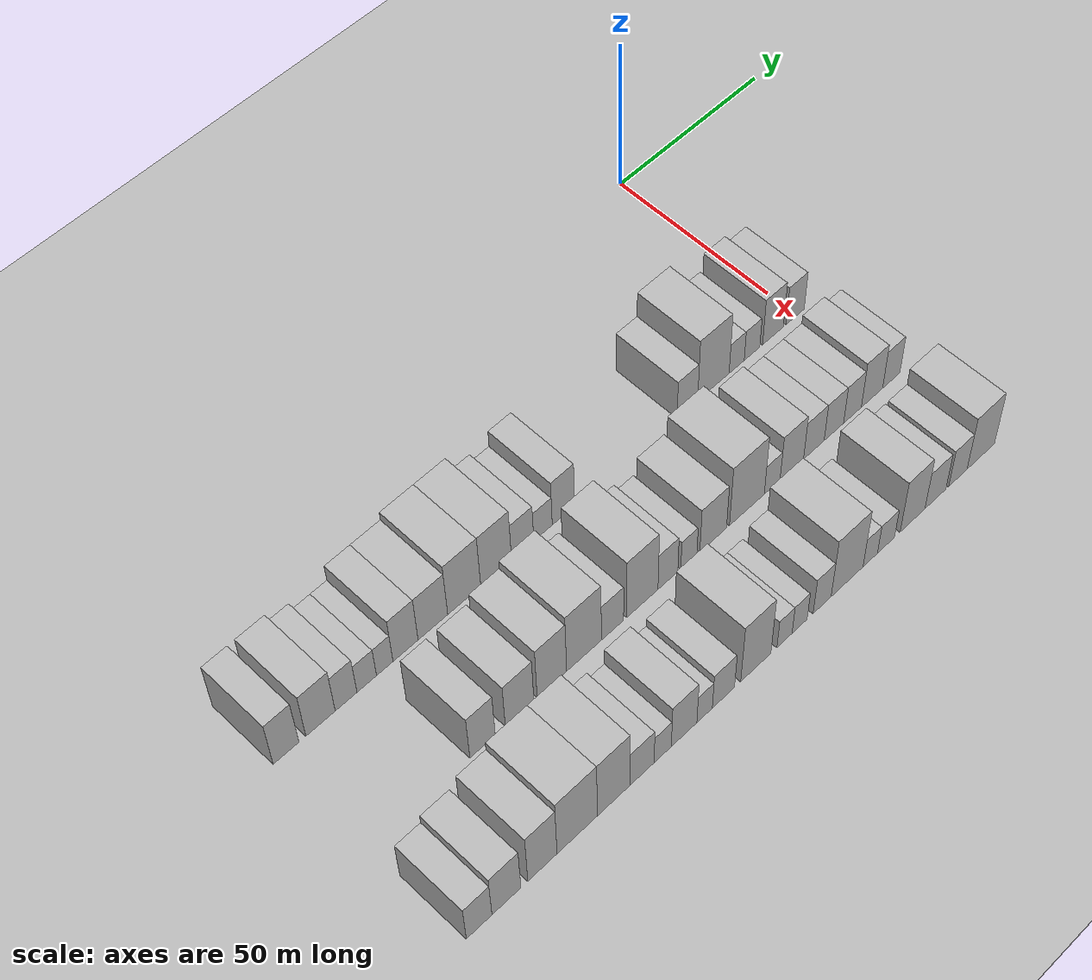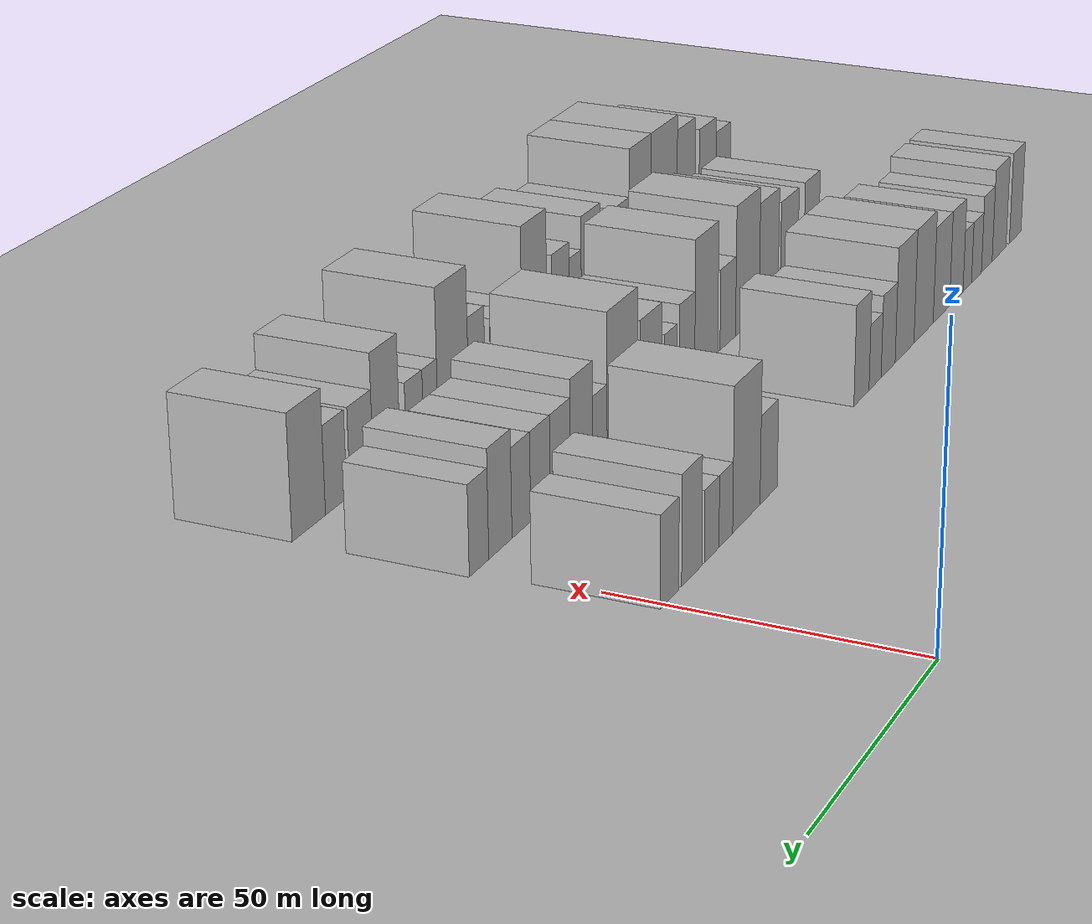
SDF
<sdf version="1.6">
 <world name="default">
  <include><name>ground_plane_1</name><uri>model://HANNAS_ground_plane</uri></include>
  <include>
   <name>ground_plane_2</name>
   <uri>model://HANNAS_ground_plane</uri>
   <pose>100 0 0  0 0 0</pose>
  </include>
  <model name="building_20">
   <static>1</static>
   <pose>50.0000 -164.3365 0 0.000000 0.000000 0.000000</pose>
   <link name="link">
    <pose>0 0 9.00 0 0 0</pose>
    <collision name="collision"><geometry><box><size>20.0000 7.3120 18.0000</size></box></geometry></collision>
    <visual name="visual">
     <cast_shadows>0</cast_shadows>
     <geometry><box><size>20.0000 7.3120 18.0000</size></box></geometry>
     <material>
      <script>
       <uri>model://HANNAS_wall/materials/scripts</uri>
       <uri>model://HANNAS_wall/materials/textures</uri>
       <name>vrc/HANNAS_wall</name>
      </script>
     </material>
    </visual>
   </link>
  </model>
  <model name="building_21">
   <static>1</static>
   <pose>50.0000 -154.4508 0 0.000000 0.000000 0.000000</pose>
   <link name="link">
    <pose>0 0 9.00 0 0 0</pose>
    <collision name="collision"><geometry><box><size>20.0000 8.4593 18.0000</size></box></geometry></collision>
    <visual name="visual">
     <cast_shadows>0</cast_shadows>
     <geometry><box><size>20.0000 8.4593 18.0000</size></box></geometry>
     <material>
      <script>
       <uri>model://HANNAS_wall/materials/scripts</uri>
       <uri>model://HANNAS_wall/materials/textures</uri>
       <name>vrc/HANNAS_wall</name>
      </script>
     </material>
    </visual>
   </link>
  </model>
  <model name="building_22">
   <static>1</static>
   <pose>50.0000 -147.0573 0 0.000000 0.000000 0.000000</pose>
   <link name="link">
    <pose>0 0 7.50 0 0 0</pose>
    <collision name="collision"><geometry><box><size>20.0000 6.3278 15.0000</size></box></geometry></collision>
    <visual name="visual">
     <cast_shadows>0</cast_shadows>
     <geometry><box><size>20.0000 6.3278 15.0000</size></box></geometry>
     <material>
      <script>
       <uri>model://HANNAS_wall/materials/scripts</uri>
       <uri>model://HANNAS_wall/materials/textures</uri>
       <name>vrc/HANNAS_wall</name>
      </script>
     </material>
    </visual>
   </link>
  </model>
  <model name="building_23">
   <static>1</static>
   <pose>50.0000 -141.0131 0 0.000000 0.000000 0.000000</pose>
   <link name="link">
    <pose>0 0 6.00 0 0 0</pose>
    <collision name="collision"><geometry><box><size>20.0000 5.7605 12.0000</size></box></geometry></collision>
    <visual name="visual">
     <cast_shadows>0</cast_shadows>
     <geometry><box><size>20.0000 5.7605 12.0000</size></box></geometry>
     <material>
      <script>
       <uri>model://HANNAS_wall/materials/scripts</uri>
       <uri>model://HANNAS_wall/materials/textures</uri>
       <name>vrc/HANNAS_wall</name>
      </script>
     </material>
    </visual>
   </link>
  </model>
  <model name="building_24">
   <static>1</static>
   <pose>50.0000 -135.6958 0 0.000000 0.000000 0.000000</pose>
   <link name="link">
    <pose>0 0 6.00 0 0 0</pose>
    <collision name="collision"><geometry><box><size>20.0000 4.8741 12.0000</size></box></geometry></collision>
    <visual name="visual">
     <cast_shadows>0</cast_shadows>
     <geometry><box><size>20.0000 4.8741 12.0000</size></box></geometry>
     <material>
      <script>
       <uri>model://HANNAS_wall/materials/scripts</uri>
       <uri>model://HANNAS_wall/materials/textures</uri>
       <name>vrc/HANNAS_wall</name>
      </script>
     </material>
    </visual>
   </link>
  </model>
  <model name="building_25">
   <static>1</static>
   <pose>50.0000 -129.4872 0 0.000000 0.000000 0.000000</pose>
   <link name="link">
    <pose>0 0 9.00 0 0 0</pose>
    <collision name="collision"><geometry><box><size>20.0000 7.5432 18.0000</size></box></geometry></collision>
    <visual name="visual">
     <cast_shadows>0</cast_shadows>
     <geometry><box><size>20.0000 7.5432 18.0000</size></box></geometry>
     <material>
      <script>
       <uri>model://HANNAS_wall/materials/scripts</uri>
       <uri>model://HANNAS_wall/materials/textures</uri>
       <name>vrc/HANNAS_wall</name>
      </script>
     </material>
    </visual>
   </link>
  </model>
  <model name="building_26">
   <static>1</static>
   <pose>50.0000 -121.2237 0 0.000000 0.000000 0.000000</pose>
   <link name="link">
    <pose>0 0 9.00 0 0 0</pose>
    <collision name="collision"><geometry><box><size>20.0000 8.9837 18.0000</size></box></geometry></collision>
    <visual name="visual">
     <cast_shadows>0</cast_shadows>
     <geometry><box><size>20.0000 8.9837 18.0000</size></box></geometry>
     <material>
      <script>
       <uri>model://HANNAS_wall/materials/scripts</uri>
       <uri>model://HANNAS_wall/materials/textures</uri>
       <name>vrc/HANNAS_wall</name>
      </script>
     </material>
    </visual>
   </link>
  </model>
  <model name="building_27">
   <static>1</static>
   <pose>50.0000 -111.6392 0 0.000000 0.000000 0.000000</pose>
   <link name="link">
    <pose>0 0 10.50 0 0 0</pose>
    <collision name="collision"><geometry><box><size>20.0000 10.1853 21.0000</size></box></geometry></collision>
    <visual name="visual">
     <cast_shadows>0</cast_shadows>
     <geometry><box><size>20.0000 10.1853 21.0000</size></box></geometry>
     <material>
      <script>
       <uri>model://HANNAS_wall/materials/scripts</uri>
       <uri>model://HANNAS_wall/materials/textures</uri>
       <name>vrc/HANNAS_wall</name>
      </script>
     </material>
    </visual>
   </link>
  </model>
  <model name="building_28">
   <static>1</static>
   <pose>50.0000 -101.7299 0 0.000000 0.000000 0.000000</pose>
   <link name="link">
    <pose>0 0 10.50 0 0 0</pose>
    <collision name="collision"><geometry><box><size>20.0000 9.6334 21.0000</size></box></geometry></collision>
    <visual name="visual">
     <cast_shadows>0</cast_shadows>
     <geometry><box><size>20.0000 9.6334 21.0000</size></box></geometry>
     <material>
      <script>
       <uri>model://HANNAS_wall/materials/scripts</uri>
       <uri>model://HANNAS_wall/materials/textures</uri>
       <name>vrc/HANNAS_wall</name>
      </script>
     </material>
    </visual>
   </link>
  </model>
  <model name="building_29">
   <static>1</static>
   <pose>50.0000 -93.3985 0 0.000000 0.000000 0.000000</pose>
   <link name="link">
    <pose>0 0 7.50 0 0 0</pose>
    <collision name="collision"><geometry><box><size>20.0000 7.0294 15.0000</size></box></geometry></collision>
    <visual name="visual">
     <cast_shadows>0</cast_shadows>
     <geometry><box><size>20.0000 7.0294 15.0000</size></box></geometry>
     <material>
      <script>
       <uri>model://HANNAS_wall/materials/scripts</uri>
       <uri>model://HANNAS_wall/materials/textures</uri>
       <name>vrc/HANNAS_wall</name>
      </script>
     </material>
    </visual>
   </link>
  </model>
  <model name="building_30">
   <static>1</static>
   <pose>50.0000 -86.9318 0 0.000000 0.000000 0.000000</pose>
   <link name="link">
    <pose>0 0 6.00 0 0 0</pose>
    <collision name="collision"><geometry><box><size>20.0000 5.9041 12.0000</size></box></geometry></collision>
    <visual name="visual">
     <cast_shadows>0</cast_shadows>
     <geometry><box><size>20.0000 5.9041 12.0000</size></box></geometry>
     <material>
      <script>
       <uri>model://HANNAS_wall/materials/scripts</uri>
       <uri>model://HANNAS_wall/materials/textures</uri>
       <name>vrc/HANNAS_wall</name>
      </script>
     </material>
    </visual>
   </link>
  </model>
  <model name="building_31">
   <static>1</static>
   <pose>50.0000 -80.3663 0 0.000000 0.000000 0.000000</pose>
   <link name="link">
    <pose>0 0 9.00 0 0 0</pose>
    <collision name="collision"><geometry><box><size>20.0000 7.2269 18.0000</size></box></geometry></collision>
    <visual name="visual">
     <cast_shadows>0</cast_shadows>
     <geometry><box><size>20.0000 7.2269 18.0000</size></box></geometry>
     <material>
      <script>
       <uri>model://HANNAS_wall/materials/scripts</uri>
       <uri>model://HANNAS_wall/materials/textures</uri>
       <name>vrc/HANNAS_wall</name>
      </script>
     </material>
    </visual>
   </link>
  </model>
  <model name="building_32">
   <static>1</static>
   <pose>50.0000 -39.1120 0 0.000000 0.000000 0.000000</pose>
   <link name="link">
    <pose>0 0 7.50 0 0 0</pose>
    <collision name="collision"><geometry><box><size>20.0000 7.0939 15.0000</size></box></geometry></collision>
    <visual name="visual">
     <cast_shadows>0</cast_shadows>
     <geometry><box><size>20.0000 7.0939 15.0000</size></box></geometry>
     <material>
      <script>
       <uri>model://HANNAS_wall/materials/scripts</uri>
       <uri>model://HANNAS_wall/materials/textures</uri>
       <name>vrc/HANNAS_wall</name>
      </script>
     </material>
    </visual>
   </link>
  </model>
  <model name="building_33">
   <static>1</static>
   <pose>50.0000 -30.1010 0 0.000000 0.000000 0.000000</pose>
   <link name="link">
    <pose>0 0 12.00 0 0 0</pose>
    <collision name="collision"><geometry><box><size>20.0000 10.9281 24.0000</size></box></geometry></collision>
    <visual name="visual">
     <cast_shadows>0</cast_shadows>
     <geometry><box><size>20.0000 10.9281 24.0000</size></box></geometry>
     <material>
      <script>
       <uri>model://HANNAS_wall/materials/scripts</uri>
       <uri>model://HANNAS_wall/materials/textures</uri>
       <name>vrc/HANNAS_wall</name>
      </script>
     </material>
    </visual>
   </link>
  </model>
  <model name="building_34">
   <static>1</static>
   <pose>50.0000 -21.9774 0 0.000000 0.000000 0.000000</pose>
   <link name="link">
    <pose>0 0 6.00 0 0 0</pose>
    <collision name="collision"><geometry><box><size>20.0000 5.3191 12.0000</size></box></geometry></collision>
    <visual name="visual">
     <cast_shadows>0</cast_shadows>
     <geometry><box><size>20.0000 5.3191 12.0000</size></box></geometry>
     <material>
      <script>
       <uri>model://HANNAS_wall/materials/scripts</uri>
       <uri>model://HANNAS_wall/materials/textures</uri>
       <name>vrc/HANNAS_wall</name>
      </script>
     </material>
    </visual>
   </link>
  </model>
  <model name="building_35">
   <static>1</static>
   <pose>50.0000 -16.5617 0 0.000000 0.000000 0.000000</pose>
   <link name="link">
    <pose>0 0 6.00 0 0 0</pose>
    <collision name="collision"><geometry><box><size>20.0000 5.5124 12.0000</size></box></geometry></collision>
    <visual name="visual">
     <cast_shadows>0</cast_shadows>
     <geometry><box><size>20.0000 5.5124 12.0000</size></box></geometry>
     <material>
      <script>
       <uri>model://HANNAS_wall/materials/scripts</uri>
       <uri>model://HANNAS_wall/materials/textures</uri>
       <name>vrc/HANNAS_wall</name>
      </script>
     </material>
    </visual>
   </link>
  </model>
  <model name="building_36">
   <static>1</static>
   <pose>50.0000 -9.0830 0 0.000000 0.000000 0.000000</pose>
   <link name="link">
    <pose>0 0 9.00 0 0 0</pose>
    <collision name="collision"><geometry><box><size>20.0000 7.4450 18.0000</size></box></geometry></collision>
    <visual name="visual">
     <cast_shadows>0</cast_shadows>
     <geometry><box><size>20.0000 7.4450 18.0000</size></box></geometry>
     <material>
      <script>
       <uri>model://HANNAS_wall/materials/scripts</uri>
       <uri>model://HANNAS_wall/materials/textures</uri>
       <name>vrc/HANNAS_wall</name>
      </script>
     </material>
    </visual>
   </link>
  </model>
  <model name="building_37">
   <static>1</static>
   <pose>50.0000 -1.0751 0 0.000000 0.000000 0.000000</pose>
   <link name="link">
    <pose>0 0 7.50 0 0 0</pose>
    <collision name="collision"><geometry><box><size>20.0000 6.5708 15.0000</size></box></geometry></collision>
    <visual name="visual">
     <cast_shadows>0</cast_shadows>
     <geometry><box><size>20.0000 6.5708 15.0000</size></box></geometry>
     <material>
      <script>
       <uri>model://HANNAS_wall/materials/scripts</uri>
       <uri>model://HANNAS_wall/materials/textures</uri>
       <name>vrc/HANNAS_wall</name>
      </script>
     </material>
    </visual>
   </link>
  </model>
  <model name="building_95">
   <static>1</static>
   <pose>79.0000 -133.8592 0 0.000000 0.000000 0.000000</pose>
   <link name="link">
    <pose>0 0 9.00 0 0 0</pose>
    <collision name="collision"><geometry><box><size>20.0000 7.5661 18.0000</size></box></geometry></collision>
    <visual name="visual">
     <cast_shadows>0</cast_shadows>
     <geometry><box><size>20.0000 7.5661 18.0000</size></box></geometry>
     <material>
      <script>
       <uri>model://HANNAS_wall/materials/scripts</uri>
       <uri>model://HANNAS_wall/materials/textures</uri>
       <name>vrc/HANNAS_wall</name>
      </script>
     </material>
    </visual>
   </link>
  </model>
  <model name="building_96">
   <static>1</static>
   <pose>79.0000 -122.7537 0 0.000000 0.000000 0.000000</pose>
   <link name="link">
    <pose>0 0 9.00 0 0 0</pose>
    <collision name="collision"><geometry><box><size>20.0000 8.6448 18.0000</size></box></geometry></collision>
    <visual name="visual">
     <cast_shadows>0</cast_shadows>
     <geometry><box><size>20.0000 8.6448 18.0000</size></box></geometry>
     <material>
      <script>
       <uri>model://HANNAS_wall/materials/scripts</uri>
       <uri>model://HANNAS_wall/materials/textures</uri>
       <name>vrc/HANNAS_wall</name>
      </script>
     </material>
    </visual>
   </link>
  </model>
  <model name="building_97">
   <static>1</static>
   <pose>79.0000 -112.8935 0 0.000000 0.000000 0.000000</pose>
   <link name="link">
    <pose>0 0 10.50 0 0 0</pose>
    <collision name="collision"><geometry><box><size>20.0000 9.0756 21.0000</size></box></geometry></collision>
    <visual name="visual">
     <cast_shadows>0</cast_shadows>
     <geometry><box><size>20.0000 9.0756 21.0000</size></box></geometry>
     <material>
      <script>
       <uri>model://HANNAS_wall/materials/scripts</uri>
       <uri>model://HANNAS_wall/materials/textures</uri>
       <name>vrc/HANNAS_wall</name>
      </script>
     </material>
    </visual>
   </link>
  </model>
  <model name="building_98">
   <static>1</static>
   <pose>79.0000 -102.9243 0 0.000000 0.000000 0.000000</pose>
   <link name="link">
    <pose>0 0 12.00 0 0 0</pose>
    <collision name="collision"><geometry><box><size>20.0000 10.8627 24.0000</size></box></geometry></collision>
    <visual name="visual">
     <cast_shadows>0</cast_shadows>
     <geometry><box><size>20.0000 10.8627 24.0000</size></box></geometry>
     <material>
      <script>
       <uri>model://HANNAS_wall/materials/scripts</uri>
       <uri>model://HANNAS_wall/materials/textures</uri>
       <name>vrc/HANNAS_wall</name>
      </script>
     </material>
    </visual>
   </link>
  </model>
  <model name="building_99">
   <static>1</static>
   <pose>79.0000 -93.9970 0 0.000000 0.000000 0.000000</pose>
   <link name="link">
    <pose>0 0 7.50 0 0 0</pose>
    <collision name="collision"><geometry><box><size>20.0000 6.9919 15.0000</size></box></geometry></collision>
    <visual name="visual">
     <cast_shadows>0</cast_shadows>
     <geometry><box><size>20.0000 6.9919 15.0000</size></box></geometry>
     <material>
      <script>
       <uri>model://HANNAS_wall/materials/scripts</uri>
       <uri>model://HANNAS_wall/materials/textures</uri>
       <name>vrc/HANNAS_wall</name>
      </script>
     </material>
    </visual>
   </link>
  </model>
  <model name="building_100">
   <static>1</static>
   <pose>79.0000 -84.4837 0 0.000000 0.000000 0.000000</pose>
   <link name="link">
    <pose>0 0 12.00 0 0 0</pose>
    <collision name="collision"><geometry><box><size>20.0000 10.0348 24.0000</size></box></geometry></collision>
    <visual name="visual">
     <cast_shadows>0</cast_shadows>
     <geometry><box><size>20.0000 10.0348 24.0000</size></box></geometry>
     <material>
      <script>
       <uri>model://HANNAS_wall/materials/scripts</uri>
       <uri>model://HANNAS_wall/materials/textures</uri>
       <name>vrc/HANNAS_wall</name>
      </script>
     </material>
    </visual>
   </link>
  </model>
  <model name="building_101">
   <static>1</static>
   <pose>79.0000 -76.2423 0 0.000000 0.000000 0.000000</pose>
   <link name="link">
    <pose>0 0 7.50 0 0 0</pose>
    <collision name="collision"><geometry><box><size>20.0000 6.4479 15.0000</size></box></geometry></collision>
    <visual name="visual">
     <cast_shadows>0</cast_shadows>
     <geometry><box><size>20.0000 6.4479 15.0000</size></box></geometry>
     <material>
      <script>
       <uri>model://HANNAS_wall/materials/scripts</uri>
       <uri>model://HANNAS_wall/materials/textures</uri>
       <name>vrc/HANNAS_wall</name>
      </script>
     </material>
    </visual>
   </link>
  </model>
  <model name="building_102">
   <static>1</static>
   <pose>79.0000 -69.3883 0 0.000000 0.000000 0.000000</pose>
   <link name="link">
    <pose>0 0 6.00 0 0 0</pose>
    <collision name="collision"><geometry><box><size>20.0000 5.2602 12.0000</size></box></geometry></collision>
    <visual name="visual">
     <cast_shadows>0</cast_shadows>
     <geometry><box><size>20.0000 5.2602 12.0000</size></box></geometry>
     <material>
      <script>
       <uri>model://HANNAS_wall/materials/scripts</uri>
       <uri>model://HANNAS_wall/materials/textures</uri>
       <name>vrc/HANNAS_wall</name>
      </script>
     </material>
    </visual>
   </link>
  </model>
  <model name="building_103">
   <static>1</static>
   <pose>79.0000 -61.3197 0 0.000000 0.000000 0.000000</pose>
   <link name="link">
    <pose>0 0 9.00 0 0 0</pose>
    <collision name="collision"><geometry><box><size>20.0000 8.8769 18.0000</size></box></geometry></collision>
    <visual name="visual">
     <cast_shadows>0</cast_shadows>
     <geometry><box><size>20.0000 8.8769 18.0000</size></box></geometry>
     <material>
      <script>
       <uri>model://HANNAS_wall/materials/scripts</uri>
       <uri>model://HANNAS_wall/materials/textures</uri>
       <name>vrc/HANNAS_wall</name>
      </script>
     </material>
    </visual>
   </link>
  </model>
  <model name="building_104">
   <static>1</static>
   <pose>79.0000 -49.9984 0 0.000000 0.000000 0.000000</pose>
   <link name="link">
    <pose>0 0 12.00 0 0 0</pose>
    <collision name="collision"><geometry><box><size>20.0000 11.7656 24.0000</size></box></geometry></collision>
    <visual name="visual">
     <cast_shadows>0</cast_shadows>
     <geometry><box><size>20.0000 11.7656 24.0000</size></box></geometry>
     <material>
      <script>
       <uri>model://HANNAS_wall/materials/scripts</uri>
       <uri>model://HANNAS_wall/materials/textures</uri>
       <name>vrc/HANNAS_wall</name>
      </script>
     </material>
    </visual>
   </link>
  </model>
  <model name="building_105">
   <static>1</static>
   <pose>79.0000 -41.4154 0 0.000000 0.000000 0.000000</pose>
   <link name="link">
    <pose>0 0 6.00 0 0 0</pose>
    <collision name="collision"><geometry><box><size>20.0000 5.4003 12.0000</size></box></geometry></collision>
    <visual name="visual">
     <cast_shadows>0</cast_shadows>
     <geometry><box><size>20.0000 5.4003 12.0000</size></box></geometry>
     <material>
      <script>
       <uri>model://HANNAS_wall/materials/scripts</uri>
       <uri>model://HANNAS_wall/materials/textures</uri>
       <name>vrc/HANNAS_wall</name>
      </script>
     </material>
    </visual>
   </link>
  </model>
  <model name="building_106">
   <static>1</static>
   <pose>79.0000 -34.6339 0 0.000000 0.000000 0.000000</pose>
   <link name="link">
    <pose>0 0 9.00 0 0 0</pose>
    <collision name="collision"><geometry><box><size>20.0000 8.1629 18.0000</size></box></geometry></collision>
    <visual name="visual">
     <cast_shadows>0</cast_shadows>
     <geometry><box><size>20.0000 8.1629 18.0000</size></box></geometry>
     <material>
      <script>
       <uri>model://HANNAS_wall/materials/scripts</uri>
       <uri>model://HANNAS_wall/materials/textures</uri>
       <name>vrc/HANNAS_wall</name>
      </script>
     </material>
    </visual>
   </link>
  </model>
  <model name="building_107">
   <static>1</static>
   <pose>79.0000 -26.9475 0 0.000000 0.000000 0.000000</pose>
   <link name="link">
    <pose>0 0 7.50 0 0 0</pose>
    <collision name="collision"><geometry><box><size>20.0000 7.2099 15.0000</size></box></geometry></collision>
    <visual name="visual">
     <cast_shadows>0</cast_shadows>
     <geometry><box><size>20.0000 7.2099 15.0000</size></box></geometry>
     <material>
      <script>
       <uri>model://HANNAS_wall/materials/scripts</uri>
       <uri>model://HANNAS_wall/materials/textures</uri>
       <name>vrc/HANNAS_wall</name>
      </script>
     </material>
    </visual>
   </link>
  </model>
  <model name="building_108">
   <static>1</static>
   <pose>79.0000 -19.9120 0 0.000000 0.000000 0.000000</pose>
   <link name="link">
    <pose>0 0 7.50 0 0 0</pose>
    <collision name="collision"><geometry><box><size>20.0000 6.8610 15.0000</size></box></geometry></collision>
    <visual name="visual">
     <cast_shadows>0</cast_shadows>
     <geometry><box><size>20.0000 6.8610 15.0000</size></box></geometry>
     <material>
      <script>
       <uri>model://HANNAS_wall/materials/scripts</uri>
       <uri>model://HANNAS_wall/materials/textures</uri>
       <name>vrc/HANNAS_wall</name>
      </script>
     </material>
    </visual>
   </link>
  </model>
  <model name="building_109">
   <static>1</static>
   <pose>79.0000 -13.2968 0 0.000000 0.000000 0.000000</pose>
   <link name="link">
    <pose>0 0 7.50 0 0 0</pose>
    <collision name="collision"><geometry><box><size>20.0000 6.3694 15.0000</size></box></geometry></collision>
    <visual name="visual">
     <cast_shadows>0</cast_shadows>
     <geometry><box><size>20.0000 6.3694 15.0000</size></box></geometry>
     <material>
      <script>
       <uri>model://HANNAS_wall/materials/scripts</uri>
       <uri>model://HANNAS_wall/materials/textures</uri>
       <name>vrc/HANNAS_wall</name>
      </script>
     </material>
    </visual>
   </link>
  </model>
  <model name="building_110">
   <static>1</static>
   <pose>79.0000 -6.2791 0 0.000000 0.000000 0.000000</pose>
   <link name="link">
    <pose>0 0 9.00 0 0 0</pose>
    <collision name="collision"><geometry><box><size>20.0000 7.6660 18.0000</size></box></geometry></collision>
    <visual name="visual">
     <cast_shadows>0</cast_shadows>
     <geometry><box><size>20.0000 7.6660 18.0000</size></box></geometry>
     <material>
      <script>
       <uri>model://HANNAS_wall/materials/scripts</uri>
       <uri>model://HANNAS_wall/materials/textures</uri>
       <name>vrc/HANNAS_wall</name>
      </script>
     </material>
    </visual>
   </link>
  </model>
  <model name="building_111">
   <static>1</static>
   <pose>79.0000 0.7079 0 0.000000 0.000000 0.000000</pose>
   <link name="link">
    <pose>0 0 7.50 0 0 0</pose>
    <collision name="collision"><geometry><box><size>20.0000 6.3080 15.0000</size></box></geometry></collision>
    <visual name="visual">
     <cast_shadows>0</cast_shadows>
     <geometry><box><size>20.0000 6.3080 15.0000</size></box></geometry>
     <material>
      <script>
       <uri>model://HANNAS_wall/materials/scripts</uri>
       <uri>model://HANNAS_wall/materials/textures</uri>
       <name>vrc/HANNAS_wall</name>
      </script>
     </material>
    </visual>
   </link>
  </model>
  <model name="building_168">
   <static>1</static>
   <pose>108.0000 -162.7079 0 0.000000 0.000000 0.000000</pose>
   <link name="link">
    <pose>0 0 7.50 0 0 0</pose>
    <collision name="collision"><geometry><box><size>20.0000 7.2775 15.0000</size></box></geometry></collision>
    <visual name="visual">
     <cast_shadows>0</cast_shadows>
     <geometry><box><size>20.0000 7.2775 15.0000</size></box></geometry>
     <material>
      <script>
       <uri>model://HANNAS_wall/materials/scripts</uri>
       <uri>model://HANNAS_wall/materials/textures</uri>
       <name>vrc/HANNAS_wall</name>
      </script>
     </material>
    </visual>
   </link>
  </model>
  <model name="building_169">
   <static>1</static>
   <pose>108.0000 -154.9152 0 0.000000 0.000000 0.000000</pose>
   <link name="link">
    <pose>0 0 9.00 0 0 0</pose>
    <collision name="collision"><geometry><box><size>20.0000 8.3080 18.0000</size></box></geometry></collision>
    <visual name="visual">
     <cast_shadows>0</cast_shadows>
     <geometry><box><size>20.0000 8.3080 18.0000</size></box></geometry>
     <material>
      <script>
       <uri>model://HANNAS_wall/materials/scripts</uri>
       <uri>model://HANNAS_wall/materials/textures</uri>
       <name>vrc/HANNAS_wall</name>
      </script>
     </material>
    </visual>
   </link>
  </model>
  <model name="building_170">
   <static>1</static>
   <pose>108.0000 -144.4939 0 0.000000 0.000000 0.000000</pose>
   <link name="link">
    <pose>0 0 10.50 0 0 0</pose>
    <collision name="collision"><geometry><box><size>20.0000 8.5344 21.0000</size></box></geometry></collision>
    <visual name="visual">
     <cast_shadows>0</cast_shadows>
     <geometry><box><size>20.0000 8.5344 21.0000</size></box></geometry>
     <material>
      <script>
       <uri>model://HANNAS_wall/materials/scripts</uri>
       <uri>model://HANNAS_wall/materials/textures</uri>
       <name>vrc/HANNAS_wall</name>
      </script>
     </material>
    </visual>
   </link>
  </model>
  <model name="building_171">
   <static>1</static>
   <pose>108.0000 -134.2296 0 0.000000 0.000000 0.000000</pose>
   <link name="link">
    <pose>0 0 12.00 0 0 0</pose>
    <collision name="collision"><geometry><box><size>20.0000 11.9943 24.0000</size></box></geometry></collision>
    <visual name="visual">
     <cast_shadows>0</cast_shadows>
     <geometry><box><size>20.0000 11.9943 24.0000</size></box></geometry>
     <material>
      <script>
       <uri>model://HANNAS_wall/materials/scripts</uri>
       <uri>model://HANNAS_wall/materials/textures</uri>
       <name>vrc/HANNAS_wall</name>
      </script>
     </material>
    </visual>
   </link>
  </model>
  <model name="building_172">
   <static>1</static>
   <pose>108.0000 -123.3023 0 0.000000 0.000000 0.000000</pose>
   <link name="link">
    <pose>0 0 12.00 0 0 0</pose>
    <collision name="collision"><geometry><box><size>20.0000 9.8601 24.0000</size></box></geometry></collision>
    <visual name="visual">
     <cast_shadows>0</cast_shadows>
     <geometry><box><size>20.0000 9.8601 24.0000</size></box></geometry>
     <material>
      <script>
       <uri>model://HANNAS_wall/materials/scripts</uri>
       <uri>model://HANNAS_wall/materials/textures</uri>
       <name>vrc/HANNAS_wall</name>
      </script>
     </material>
    </visual>
   </link>
  </model>
  <model name="building_173">
   <static>1</static>
   <pose>108.0000 -114.6688 0 0.000000 0.000000 0.000000</pose>
   <link name="link">
    <pose>0 0 7.50 0 0 0</pose>
    <collision name="collision"><geometry><box><size>20.0000 7.4068 15.0000</size></box></geometry></collision>
    <visual name="visual">
     <cast_shadows>0</cast_shadows>
     <geometry><box><size>20.0000 7.4068 15.0000</size></box></geometry>
     <material>
      <script>
       <uri>model://HANNAS_wall/materials/scripts</uri>
       <uri>model://HANNAS_wall/materials/textures</uri>
       <name>vrc/HANNAS_wall</name>
      </script>
     </material>
    </visual>
   </link>
  </model>
  <model name="building_174">
   <static>1</static>
   <pose>108.0000 -108.3056 0 0.000000 0.000000 0.000000</pose>
   <link name="link">
    <pose>0 0 6.00 0 0 0</pose>
    <collision name="collision"><geometry><box><size>20.0000 5.3197 12.0000</size></box></geometry></collision>
    <visual name="visual">
     <cast_shadows>0</cast_shadows>
     <geometry><box><size>20.0000 5.3197 12.0000</size></box></geometry>
     <material>
      <script>
       <uri>model://HANNAS_wall/materials/scripts</uri>
       <uri>model://HANNAS_wall/materials/textures</uri>
       <name>vrc/HANNAS_wall</name>
      </script>
     </material>
    </visual>
   </link>
  </model>
  <model name="building_175">
   <static>1</static>
   <pose>108.0000 -101.6436 0 0.000000 0.000000 0.000000</pose>
   <link name="link">
    <pose>0 0 9.00 0 0 0</pose>
    <collision name="collision"><geometry><box><size>20.0000 8.0044 18.0000</size></box></geometry></collision>
    <visual name="visual">
     <cast_shadows>0</cast_shadows>
     <geometry><box><size>20.0000 8.0044 18.0000</size></box></geometry>
     <material>
      <script>
       <uri>model://HANNAS_wall/materials/scripts</uri>
       <uri>model://HANNAS_wall/materials/textures</uri>
       <name>vrc/HANNAS_wall</name>
      </script>
     </material>
    </visual>
   </link>
  </model>
  <model name="building_176">
   <static>1</static>
   <pose>108.0000 -95.1976 0 0.000000 0.000000 0.000000</pose>
   <link name="link">
    <pose>0 0 6.00 0 0 0</pose>
    <collision name="collision"><geometry><box><size>20.0000 4.8876 12.0000</size></box></geometry></collision>
    <visual name="visual">
     <cast_shadows>0</cast_shadows>
     <geometry><box><size>20.0000 4.8876 12.0000</size></box></geometry>
     <material>
      <script>
       <uri>model://HANNAS_wall/materials/scripts</uri>
       <uri>model://HANNAS_wall/materials/textures</uri>
       <name>vrc/HANNAS_wall</name>
      </script>
     </material>
    </visual>
   </link>
  </model>
  <model name="building_177">
   <static>1</static>
   <pose>108.0000 -89.2039 0 0.000000 0.000000 0.000000</pose>
   <link name="link">
    <pose>0 0 7.50 0 0 0</pose>
    <collision name="collision"><geometry><box><size>20.0000 7.0996 15.0000</size></box></geometry></collision>
    <visual name="visual">
     <cast_shadows>0</cast_shadows>
     <geometry><box><size>20.0000 7.0996 15.0000</size></box></geometry>
     <material>
      <script>
       <uri>model://HANNAS_wall/materials/scripts</uri>
       <uri>model://HANNAS_wall/materials/textures</uri>
       <name>vrc/HANNAS_wall</name>
      </script>
     </material>
    </visual>
   </link>
  </model>
  <model name="building_178">
   <static>1</static>
   <pose>108.0000 -78.7677 0 0.000000 0.000000 0.000000</pose>
   <link name="link">
    <pose>0 0 12.00 0 0 0</pose>
    <collision name="collision"><geometry><box><size>20.0000 9.7729 24.0000</size></box></geometry></collision>
    <visual name="visual">
     <cast_shadows>0</cast_shadows>
     <geometry><box><size>20.0000 9.7729 24.0000</size></box></geometry>
     <material>
      <script>
       <uri>model://HANNAS_wall/materials/scripts</uri>
       <uri>model://HANNAS_wall/materials/textures</uri>
       <name>vrc/HANNAS_wall</name>
      </script>
     </material>
    </visual>
   </link>
  </model>
  <model name="building_179">
   <static>1</static>
   <pose>108.0000 -69.3814 0 0.000000 0.000000 0.000000</pose>
   <link name="link">
    <pose>0 0 6.00 0 0 0</pose>
    <collision name="collision"><geometry><box><size>20.0000 4.9996 12.0000</size></box></geometry></collision>
    <visual name="visual">
     <cast_shadows>0</cast_shadows>
     <geometry><box><size>20.0000 4.9996 12.0000</size></box></geometry>
     <material>
      <script>
       <uri>model://HANNAS_wall/materials/scripts</uri>
       <uri>model://HANNAS_wall/materials/textures</uri>
       <name>vrc/HANNAS_wall</name>
      </script>
     </material>
    </visual>
   </link>
  </model>
  <model name="building_180">
   <static>1</static>
   <pose>108.0000 -64.3899 0 0.000000 0.000000 0.000000</pose>
   <link name="link">
    <pose>0 0 6.00 0 0 0</pose>
    <collision name="collision"><geometry><box><size>20.0000 4.9835 12.0000</size></box></geometry></collision>
    <visual name="visual">
     <cast_shadows>0</cast_shadows>
     <geometry><box><size>20.0000 4.9835 12.0000</size></box></geometry>
     <material>
      <script>
       <uri>model://HANNAS_wall/materials/scripts</uri>
       <uri>model://HANNAS_wall/materials/textures</uri>
       <name>vrc/HANNAS_wall</name>
      </script>
     </material>
    </visual>
   </link>
  </model>
  <model name="building_181">
   <static>1</static>
   <pose>108.0000 -56.8712 0 0.000000 0.000000 0.000000</pose>
   <link name="link">
    <pose>0 0 7.50 0 0 0</pose>
    <collision name="collision"><geometry><box><size>20.0000 6.0538 15.0000</size></box></geometry></collision>
    <visual name="visual">
     <cast_shadows>0</cast_shadows>
     <geometry><box><size>20.0000 6.0538 15.0000</size></box></geometry>
     <material>
      <script>
       <uri>model://HANNAS_wall/materials/scripts</uri>
       <uri>model://HANNAS_wall/materials/textures</uri>
       <name>vrc/HANNAS_wall</name>
      </script>
     </material>
    </visual>
   </link>
  </model>
  <model name="building_182">
   <static>1</static>
   <pose>108.0000 -48.4140 0 0.000000 0.000000 0.000000</pose>
   <link name="link">
    <pose>0 0 12.00 0 0 0</pose>
    <collision name="collision"><geometry><box><size>20.0000 10.8608 24.0000</size></box></geometry></collision>
    <visual name="visual">
     <cast_shadows>0</cast_shadows>
     <geometry><box><size>20.0000 10.8608 24.0000</size></box></geometry>
     <material>
      <script>
       <uri>model://HANNAS_wall/materials/scripts</uri>
       <uri>model://HANNAS_wall/materials/textures</uri>
       <name>vrc/HANNAS_wall</name>
      </script>
     </material>
    </visual>
   </link>
  </model>
  <model name="building_183">
   <static>1</static>
   <pose>108.0000 -40.4996 0 0.000000 0.000000 0.000000</pose>
   <link name="link">
    <pose>0 0 6.00 0 0 0</pose>
    <collision name="collision"><geometry><box><size>20.0000 4.9679 12.0000</size></box></geometry></collision>
    <visual name="visual">
     <cast_shadows>0</cast_shadows>
     <geometry><box><size>20.0000 4.9679 12.0000</size></box></geometry>
     <material>
      <script>
       <uri>model://HANNAS_wall/materials/scripts</uri>
       <uri>model://HANNAS_wall/materials/textures</uri>
       <name>vrc/HANNAS_wall</name>
      </script>
     </material>
    </visual>
   </link>
  </model>
  <model name="building_184">
   <static>1</static>
   <pose>108.0000 -35.0593 0 0.000000 0.000000 0.000000</pose>
   <link name="link">
    <pose>0 0 6.00 0 0 0</pose>
    <collision name="collision"><geometry><box><size>20.0000 5.9127 12.0000</size></box></geometry></collision>
    <visual name="visual">
     <cast_shadows>0</cast_shadows>
     <geometry><box><size>20.0000 5.9127 12.0000</size></box></geometry>
     <material>
      <script>
       <uri>model://HANNAS_wall/materials/scripts</uri>
       <uri>model://HANNAS_wall/materials/textures</uri>
       <name>vrc/HANNAS_wall</name>
      </script>
     </material>
    </visual>
   </link>
  </model>
  <model name="building_185">
   <static>1</static>
   <pose>108.0000 -25.7330 0 0.000000 0.000000 0.000000</pose>
   <link name="link">
    <pose>0 0 10.50 0 0 0</pose>
    <collision name="collision"><geometry><box><size>20.0000 8.7400 21.0000</size></box></geometry></collision>
    <visual name="visual">
     <cast_shadows>0</cast_shadows>
     <geometry><box><size>20.0000 8.7400 21.0000</size></box></geometry>
     <material>
      <script>
       <uri>model://HANNAS_wall/materials/scripts</uri>
       <uri>model://HANNAS_wall/materials/textures</uri>
       <name>vrc/HANNAS_wall</name>
      </script>
     </material>
    </visual>
   </link>
  </model>
  <model name="building_186">
   <static>1</static>
   <pose>108.0000 -17.6276 0 0.000000 0.000000 0.000000</pose>
   <link name="link">
    <pose>0 0 7.50 0 0 0</pose>
    <collision name="collision"><geometry><box><size>20.0000 7.4708 15.0000</size></box></geometry></collision>
    <visual name="visual">
     <cast_shadows>0</cast_shadows>
     <geometry><box><size>20.0000 7.4708 15.0000</size></box></geometry>
     <material>
      <script>
       <uri>model://HANNAS_wall/materials/scripts</uri>
       <uri>model://HANNAS_wall/materials/textures</uri>
       <name>vrc/HANNAS_wall</name>
      </script>
     </material>
    </visual>
   </link>
  </model>
  <model name="building_187">
   <static>1</static>
   <pose>108.0000 -9.5798 0 0.000000 0.000000 0.000000</pose>
   <link name="link">
    <pose>0 0 7.50 0 0 0</pose>
    <collision name="collision"><geometry><box><size>20.0000 6.6248 15.0000</size></box></geometry></collision>
    <visual name="visual">
     <cast_shadows>0</cast_shadows>
     <geometry><box><size>20.0000 6.6248 15.0000</size></box></geometry>
     <material>
      <script>
       <uri>model://HANNAS_wall/materials/scripts</uri>
       <uri>model://HANNAS_wall/materials/textures</uri>
       <name>vrc/HANNAS_wall</name>
      </script>
     </material>
    </visual>
   </link>
  </model>
  <model name="building_188">
   <static>1</static>
   <pose>108.0000 -1.2483 0 0.000000 0.000000 0.000000</pose>
   <link name="link">
    <pose>0 0 10.50 0 0 0</pose>
    <collision name="collision"><geometry><box><size>20.0000 10.0383 21.0000</size></box></geometry></collision>
    <visual name="visual">
     <cast_shadows>0</cast_shadows>
     <geometry><box><size>20.0000 10.0383 21.0000</size></box></geometry>
     <material>
      <script>
       <uri>model://HANNAS_wall/materials/scripts</uri>
       <uri>model://HANNAS_wall/materials/textures</uri>
       <name>vrc/HANNAS_wall</name>
      </script>
     </material>
    </visual>
   </link>
  </model>
 </world>
</sdf>
